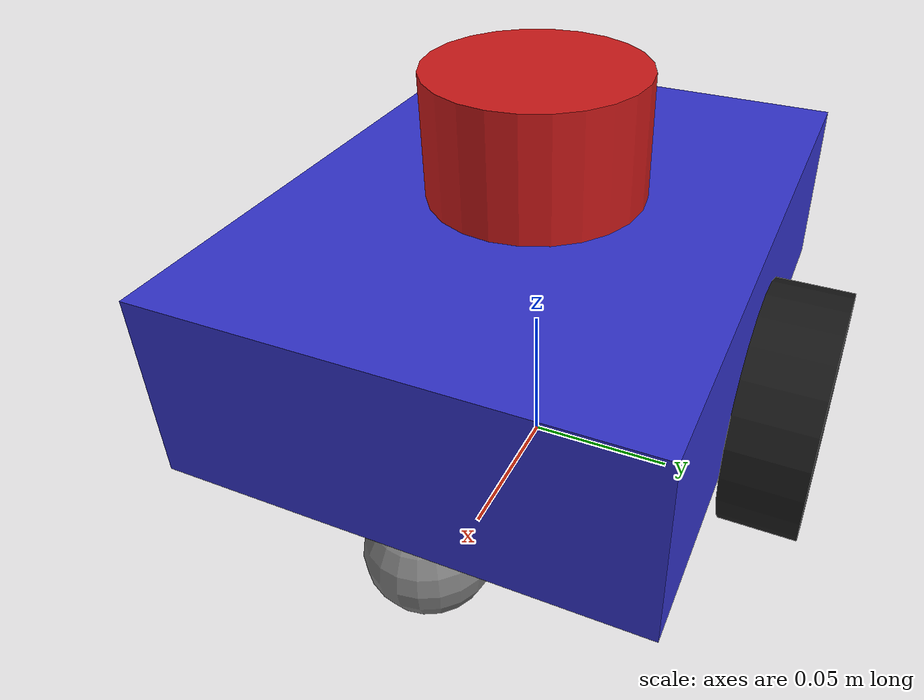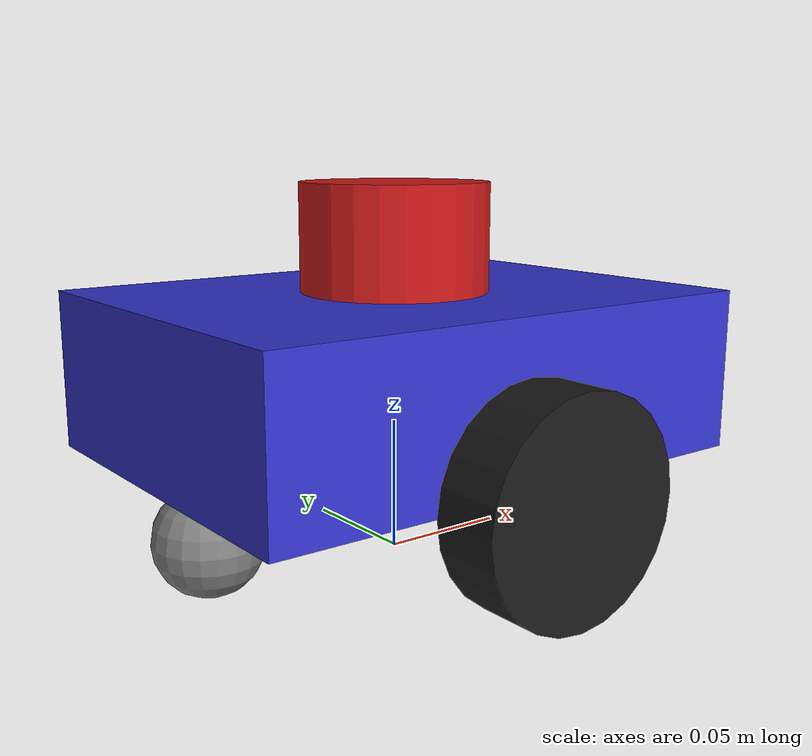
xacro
<?xml version="1.0" ?>
<robot name="my_robot" xmlns:xacro="http://www.ros.org/wiki/xacro">

  <xacro:include filename="$(find my_robot_description)/urdf/materials.xacro" />
  <xacro:include filename="$(find my_robot_description)/urdf/my_robot.gazebo" />

  <!-- ================= BASE FOOTPRINT ================= -->
  <!-- Virtual link at ground level — required by diff-drive plugin -->
  <link name="base_footprint"/>

  <joint name="base_link_joint" type="fixed">
    <parent link="base_footprint"/>
    <child  link="base_link"/>
    <!-- Lift chassis so wheels touch the ground:
         wheel_radius(0.04) - chassis_bottom_to_wheel_hub(0.0) = 0.04m -->
    <origin xyz="0 0 0.04" rpy="0 0 0"/>
  </joint>

  <!-- ================= CHASSIS ================= -->
  <link name="base_link">
    <inertial>
      <!-- CoM at geometric center of box -->
      <origin xyz="0 0 0.03" rpy="0 0 0"/>
      <mass value="1.5"/>
      <inertia ixx="0.003262" iyy="0.005450" izz="0.007812"
               ixy="0.0"      iyz="0.0"      ixz="0.0"/>
    </inertial>
    <visual>
      <origin xyz="0 0 0.03" rpy="0 0 0"/>
      <geometry>
        <box size="0.20 0.15 0.06"/>
      </geometry>
      <material name="blue">
        <color rgba="0.2 0.2 0.8 1.0"/>
      </material>
    </visual>
    <collision>
      <origin xyz="0 0 0.03" rpy="0 0 0"/>
      <geometry>
        <box size="0.20 0.15 0.06"/>
      </geometry>
    </collision>
  </link>

  <!-- ================= RIGHT WHEEL ================= -->
  <!--
    Placed at y=+0.0875 (right side).
    Cylinder axis aligned with Y by rotating 90° around X (rpy="1.5708 0 0").
    All origins are 0 0 0 — joint handles positioning entirely.
  -->
  <link name="right_wheel_1">
    <inertial>
      <origin xyz="0 0 0" rpy="0 0 0"/>
      <mass value="0.1"/>
      <inertia ixx="0.000045" iyy="0.000080" izz="0.000045"
               ixy="0.0"      iyz="0.0"      ixz="0.0"/>
    </inertial>
    <visual>
      <origin xyz="0 0 0" rpy="1.5708 0 0"/>
      <geometry>
        <cylinder radius="0.04" length="0.025"/>
      </geometry>
      <material name="black">
        <color rgba="0.1 0.1 0.1 1.0"/>
      </material>
    </visual>
    <collision>
      <origin xyz="0 0 0" rpy="1.5708 0 0"/>
      <geometry>
        <cylinder radius="0.04" length="0.025"/>
      </geometry>
    </collision>
  </link>

  <joint name="right_wheel_joint" type="continuous">
    <!-- y=+0.0875: half chassis width(0.075) + half wheel width(0.0125) -->
    <origin xyz="0 0.0875 0" rpy="0 0 0"/>
    <parent link="base_link"/>
    <child  link="right_wheel_1"/>
    <axis xyz="0 1 0"/>
  </joint>

  <!-- ================= LEFT WHEEL ================= -->
  <link name="left_wheel_1">
    <inertial>
      <origin xyz="0 0 0" rpy="0 0 0"/>
      <mass value="0.1"/>
      <inertia ixx="0.000045" iyy="0.000080" izz="0.000045"
               ixy="0.0"      iyz="0.0"      ixz="0.0"/>
    </inertial>
    <visual>
      <origin xyz="0 0 0" rpy="1.5708 0 0"/>
      <geometry>
        <cylinder radius="0.04" length="0.025"/>
      </geometry>
      <material name="black">
        <color rgba="0.1 0.1 0.1 1.0"/>
      </material>
    </visual>
    <collision>
      <origin xyz="0 0 0" rpy="1.5708 0 0"/>
      <geometry>
        <cylinder radius="0.04" length="0.025"/>
      </geometry>
    </collision>
  </link>

  <joint name="left_wheel_joint" type="continuous">
    <!-- y=-0.0875: mirrored from right side -->
    <origin xyz="0 -0.0875 0" rpy="0 0 0"/>
    <parent link="base_link"/>
    <child  link="left_wheel_1"/>
    <axis xyz="0 1 0"/>
  </joint>

  <!-- ================= CASTER WHEEL (rear) ================= -->
  <!--
    Passive rear support — no joint motor, just a sphere that rolls freely.
    Prevents the chassis from tipping backwards.
  -->
  <link name="caster_wheel">
    <inertial>
      <origin xyz="0 0 0" rpy="0 0 0"/>
      <mass value="0.05"/>
      <inertia ixx="0.000008" iyy="0.000008" izz="0.000008"
               ixy="0.0"      iyz="0.0"      ixz="0.0"/>
    </inertial>
    <visual>
      <origin xyz="0 0 0" rpy="0 0 0"/>
      <geometry>
        <sphere radius="0.02"/>
      </geometry>
      <material name="grey">
        <color rgba="0.5 0.5 0.5 1.0"/>
      </material>
    </visual>
    <collision>
      <origin xyz="0 0 0" rpy="0 0 0"/>
      <geometry>
        <sphere radius="0.02"/>
      </geometry>
    </collision>
  </link>

  <joint name="caster_joint" type="fixed">
    <!-- Rear center, z=-0.02 so sphere bottom touches ground -->
    <origin xyz="-0.08 0 -0.02" rpy="0 0 0"/>
    <parent link="base_link"/>
    <child  link="caster_wheel"/>
  </joint>

  <!-- ================= FRONT CASTER WHEEL ================= -->
  <link name="front_caster_wheel">
    <inertial>
      <origin xyz="0 0 0" rpy="0 0 0"/>
      <mass value="0.05"/>
      <inertia ixx="0.000008" iyy="0.000008" izz="0.000008"
               ixy="0.0"      iyz="0.0"      ixz="0.0"/>
    </inertial>
    <visual>
      <origin xyz="0 0 0" rpy="0 0 0"/>
      <geometry>
        <sphere radius="0.02"/>
      </geometry>
      <material name="grey">
        <color rgba="0.5 0.5 0.5 1.0"/>
      </material>
    </visual>
    <collision>
      <origin xyz="0 0 0" rpy="0 0 0"/>
      <geometry>
        <sphere radius="0.02"/>
      </geometry>
    </collision>
  </link>

  <joint name="front_caster_joint" type="fixed">
    <!-- Front center, z=-0.02 so sphere bottom touches ground -->
    <origin xyz="0.08 0 -0.02" rpy="0 0 0"/>
    <parent link="base_link"/>
    <child  link="front_caster_wheel"/>
  </joint>

  <!-- ================= LIDAR ================= -->
  <link name="lidar_1">
    <inertial>
      <origin xyz="0 0 0.02" rpy="0 0 0"/>
      <mass value="0.1"/>
      <inertia ixx="0.000044" iyy="0.000044" izz="0.000061"
               ixy="0.0"      iyz="0.0"      ixz="0.0"/>
    </inertial>
    <visual>
      <origin xyz="0 0 0.02" rpy="0 0 0"/>
      <geometry>
        <cylinder radius="0.035" length="0.04"/>
      </geometry>
      <material name="red">
        <color rgba="0.8 0.1 0.1 1.0"/>
      </material>
    </visual>
    <collision>
      <origin xyz="0 0 0.02" rpy="0 0 0"/>
      <geometry>
        <cylinder radius="0.035" length="0.04"/>
      </geometry>
    </collision>
  </link>

  <joint name="lidar_joint" type="fixed">
    <!-- Sits on top of chassis (z=0.06) at center -->
    <origin xyz="0 0 0.06" rpy="0 0 0"/>
    <parent link="base_link"/>
    <child  link="lidar_1"/>
  </joint>

</robot>
